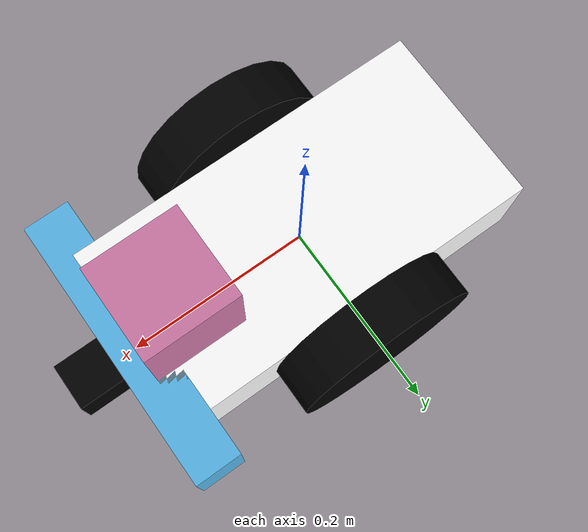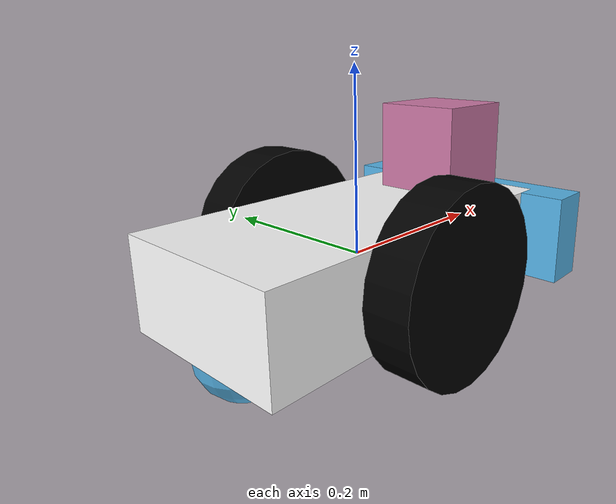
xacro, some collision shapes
<?xml version='1.0'?>

<robot name="my_robot" xmlns:xacro="http://www.ros.org/wiki/xacro">

  <!-- Import sensor plugins -->
  <xacro:include filename="$(find my_robot)/urdf/my_robot.gazebo" />

  <!-- Color for Rviz -->
  <material name="black">
    <color rgba="0.0 0.0 0.0 1.0"/>
  </material>

  <material name="white">
    <color rgba="1.0 1.0 1.0 1.0"/>
  </material>

  <!-- Robot links & joints -->
  <link name="robot_footprint"></link>

  <joint name="robot_footprint_joint" type="fixed">
    <origin xyz="0 0 0" rpy="0 0 0" />
    <parent link="robot_footprint"/>
    <child link="chassis" />
  </joint>

  <link name='chassis'>
    <pose>0 0 0.1 0 0 0</pose>

    <inertial>
      <mass value="15.0"/>
      <origin xyz="0.0 0 0" rpy=" 0 0 0"/>
      <inertia
          ixx="0.1" ixy="0" ixz="0"
          iyy="0.1" iyz="0"
          izz="0.1"
      />
    </inertial>

    <collision name='chassis_collision'>
      <origin xyz="0 0 0" rpy=" 0 0 0"/>
      <geometry>
        <box size=".4 .2 .1"/>
      </geometry>
    </collision>

    <visual name='chassis_visual'>
      <origin xyz="0 0 0" rpy=" 0 0 0"/>
      <geometry>
        <box size=".4 .2 .1"/>
      </geometry>
      <material name="white"/>  <!-- This only shows in Rviz -->
    </visual>

    <visual name='chassis_front_visual'>
      <origin xyz="0.2 0 0" rpy=" 0 0 0"/>
      <geometry>
        <box size=".05 .3 .1"/>
      </geometry>
    </visual>

    <collision name='chassis_front_collision'>
      <origin xyz="0.2 0 0" rpy=" 0 0 0"/>
      <geometry>
        <box size=".05 .3 .1"/>
      </geometry>
    </collision>

    <collision name='back_caster_collision'>
      <origin xyz="-0.15 0 -0.05" rpy=" 0 0 0"/>
      <geometry>
        <sphere radius="0.0499"/>
      </geometry>
    </collision>

    <visual name='back_caster_visual'>
      <origin xyz="-0.15 0 -0.05" rpy=" 0 0 0"/>
      <geometry>
        <sphere radius="0.05"/>
      </geometry>
    </visual>

    <collision name='front_caster_collision'>
      <origin xyz="0.15 0 -0.05" rpy=" 0 0 0"/>
      <geometry>
        <sphere radius="0.0499"/>
      </geometry>
    </collision>

    <visual name='front_caster_visual'>
      <origin xyz="0.15 0 -0.05" rpy=" 0 0 0"/>
      <geometry>
        <sphere radius="0.05"/>
      </geometry>
    </visual>

  </link>

  <!-- Left wheel-->
  <link name='left_wheel'>
    <pose>0 0.15 0 0 0 0</pose>

    <inertial>
      <mass value="5.0"/>
      <origin xyz="0.0 0 0" rpy=" 0 1.5707 1.5707"/>
      <inertia
          ixx="0.1" ixy="0" ixz="0"
          iyy="0.1" iyz="0"
          izz="0.1"
      />
    </inertial>

    <collision name='collision'>
      <origin xyz="0 0 0" rpy=" 0 1.5707 1.5707"/>
      <geometry>
        <cylinder length="0.05" radius="0.1"/>
      </geometry>
    </collision>

    <visual name='left_wheel_visual'>
      <origin xyz="0 0 0" rpy=" 0 1.5707 1.5707"/>
      <geometry>
        <cylinder length="0.05" radius="0.1"/>
      </geometry>
      <material name="black"/>  <!-- This only shows in Rviz -->
    </visual>

  </link>

  <joint type="continuous" name="left_wheel_hinge">
    <origin xyz="0 0.125 0" rpy=" 0 0 0"/>
    <child link="left_wheel" />
    <parent link="chassis" />
    <axis xyz="0 1 0" rpy="0 0 0"/>
    <limit effort="10000" velocity="1000"/>
    <dynamics damping="1.0" friction="1.0"/>
  </joint>

  <!-- Right wheel-->
  <link name="right_wheel">
    <pose>0 0.15 0 0 0 0</pose>

    <inertial>
      <mass value="5.0"/>
      <origin xyz="0.0 0 0" rpy=" 0 1.5707 1.5707"/>
      <inertia
          ixx="0.1" ixy="0" ixz="0"
          iyy="0.1" iyz="0"
          izz="0.1"
      />
    </inertial>

    <collision name='collision'>
      <origin xyz="0 0 0" rpy=" 0 1.5707 1.5707"/>
      <geometry>
        <cylinder length="0.05" radius="0.1"/>
      </geometry>
    </collision>

    <visual name='right_wheel_visual'>
      <origin xyz="0 0 0" rpy=" 0 1.5707 1.5707"/>
      <geometry>
        <cylinder length="0.05" radius="0.1"/>
      </geometry>
      <material name="black"/>  <!-- This only shows in Rviz -->
    </visual>

  </link>

  <joint type="continuous" name="right_wheel_hinge">
    <origin xyz="0 -0.125 0" rpy=" 0 0 0"/>
    <child link="right_wheel" />
    <parent link="chassis" />
    <axis xyz="0 1 0" rpy="0 0 0"/>
    <limit effort="10000" velocity="1000"/>
    <dynamics damping="1.0" friction="1.0"/>
  </joint>

  <!-- Camera -->
  <link name="camera">
    <pose>0 0 0 0 0 0</pose>

    <inertial>
      <mass value="0.1"/>
      <origin xyz="0.0 0 0" rpy=" 0 0 0"/>
      <inertia
          ixx="1e-6" ixy="0" ixz="0"
          iyy="1e-6" iyz="0"
          izz="1e-6"
      />
    </inertial>

    <collision name="camera_collision">
      <origin xyz="0 0 0" rpy=" 0 0 0"/>
      <geometry>
        <box size="0.05 0.05 0.05"/>
      </geometry>
    </collision>

    <visual>
      <origin xyz="0 0 0" rpy=" 0 0 0"/>
      <geometry>
        <box size="0.05 0.05 0.05"/>
      </geometry>
      <material name="black"/>  <!-- This only shows in Rviz -->
    </visual>
  </link>

  <joint type="fixed" name="camera_joint">
    <origin xyz="0.25 0 0" rpy="0 0 0"/>
    <child link="camera" />
    <parent link="chassis" />
    <axis xyz="0 1 0" rpy="0 0 0"/>
  </joint>

  <gazebo reference="camera">
    <material>Gazebo/Black</material>
  </gazebo>

  <gazebo reference="right_wheel">
    <material>Gazebo/Black</material>
  </gazebo>

  <gazebo reference="left_wheel">
    <material>Gazebo/Black</material>
  </gazebo>

  <!-- RGB-D camera -->
  <link name="camera_link_optical">
  </link>

  <joint name="camera_optical_joint" type="fixed">
    <origin xyz="0 0 0" rpy="-1.5707 0 -1.5707"/>
    <parent link="camera"/>
    <child link="camera_link_optical"/>
  </joint>

  <!-- Lidar -->
  <link name='hokuyo'>
    <pose>0 0 0 0 0 0</pose>

    <inertial>
      <mass value="1e-5"/>
      <origin xyz="0.0 0 0" rpy=" 0 0 0"/>
      <inertia
          ixx="1e-6" ixy="0" ixz="0"
          iyy="1e-6" iyz="0"
          izz="1e-6"
      />
    </inertial>

    <collision name='collision'>
      <origin xyz="0 0 0" rpy=" 0 0 0"/>
      <geometry>
        <box size="0.1 0.1 0.1"/>
      </geometry>
    </collision>

    <visual name='visual'>
      <origin xyz="0 0 0" rpy=" 0 0 0"/>
      <geometry>
        <mesh filename="package://my_robot/meshes/hokuyo.dae"/>
      </geometry>
    </visual>

  </link>

  <joint type="fixed" name="hokuyo_joint">
    <origin xyz="0.15 0 0.1" rpy="0 0 0"/>
    <child link="hokuyo" />
    <parent link="chassis" />
    <axis xyz="0 1 0" rpy="0 0 0"/>
  </joint>

</robot>
